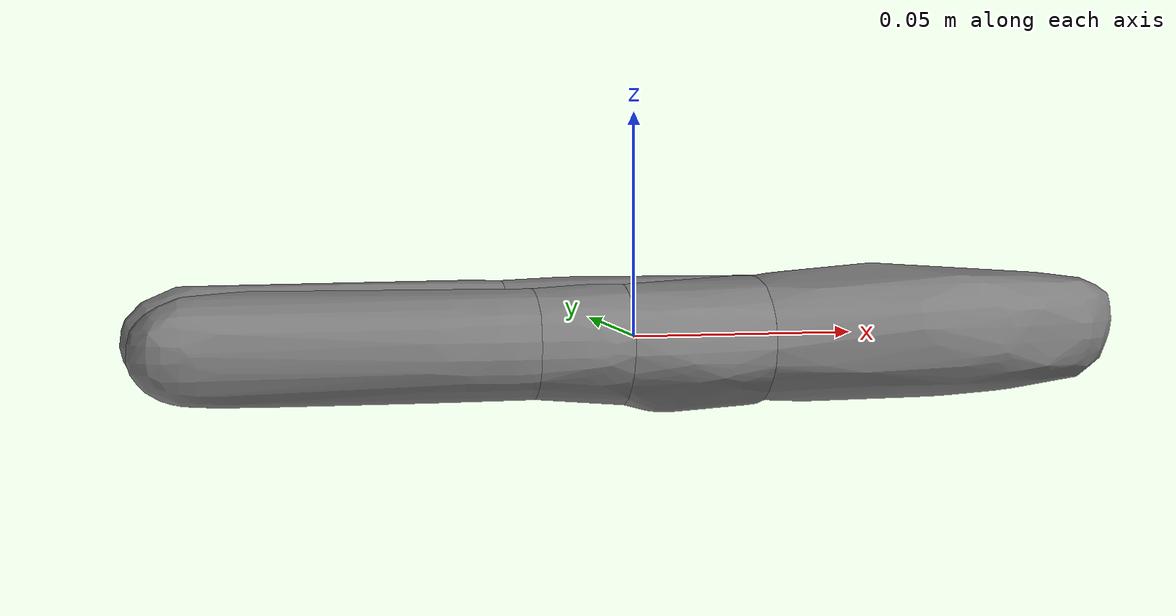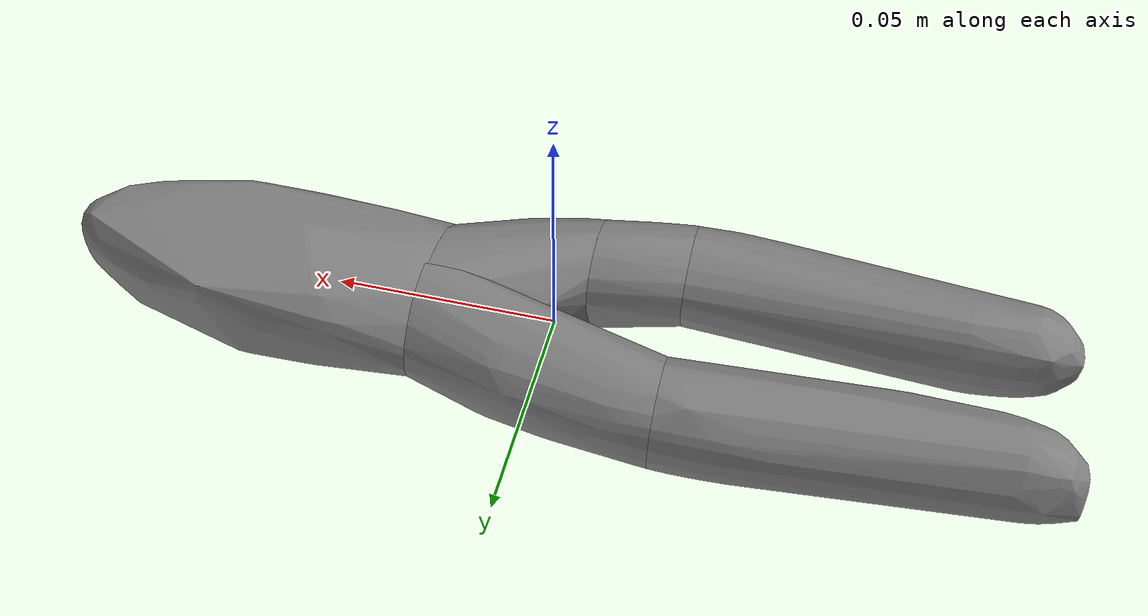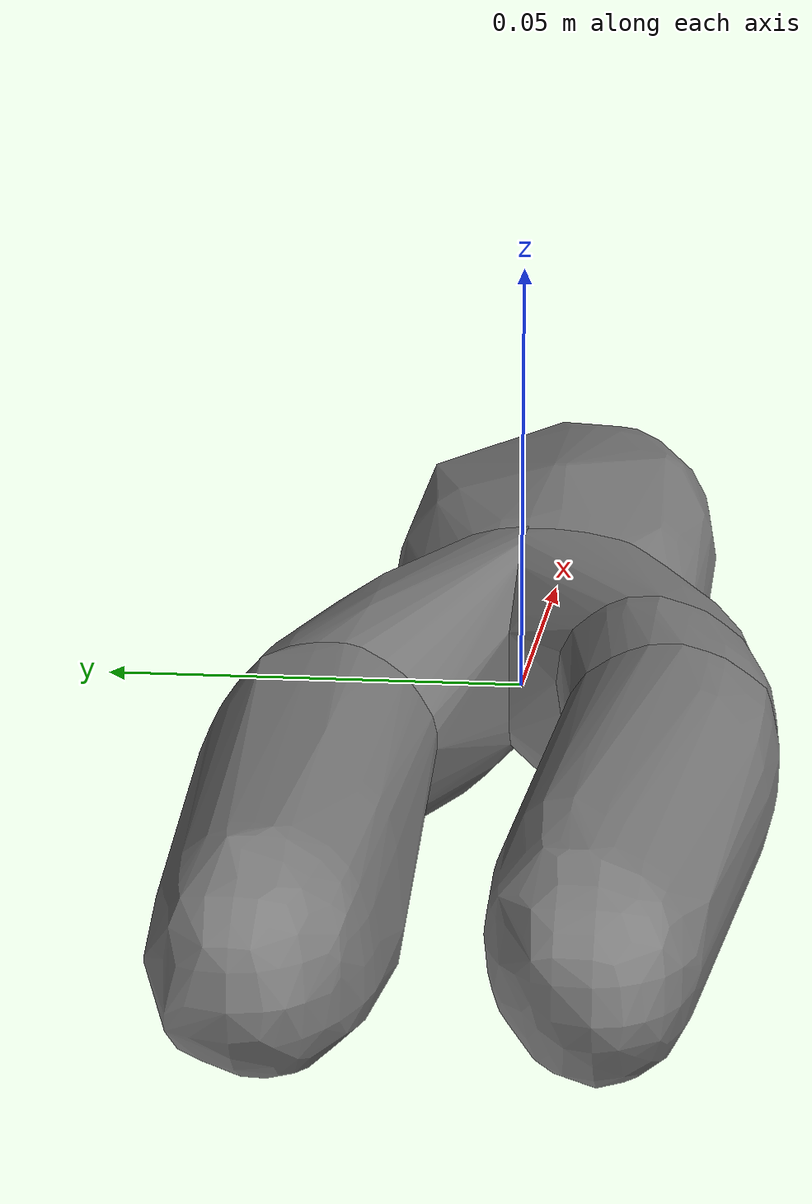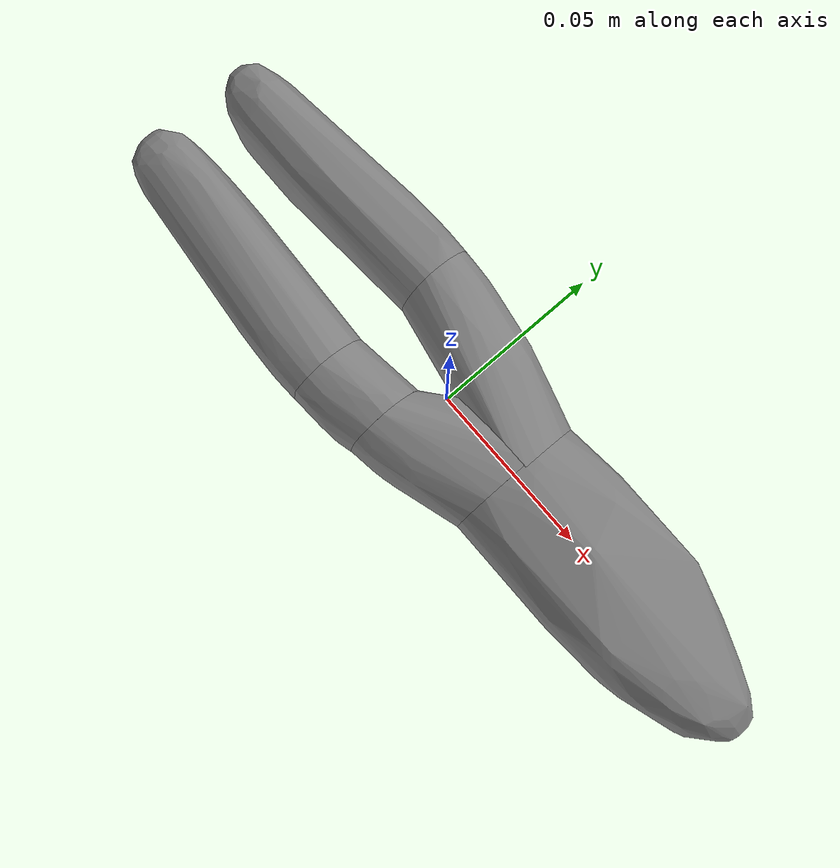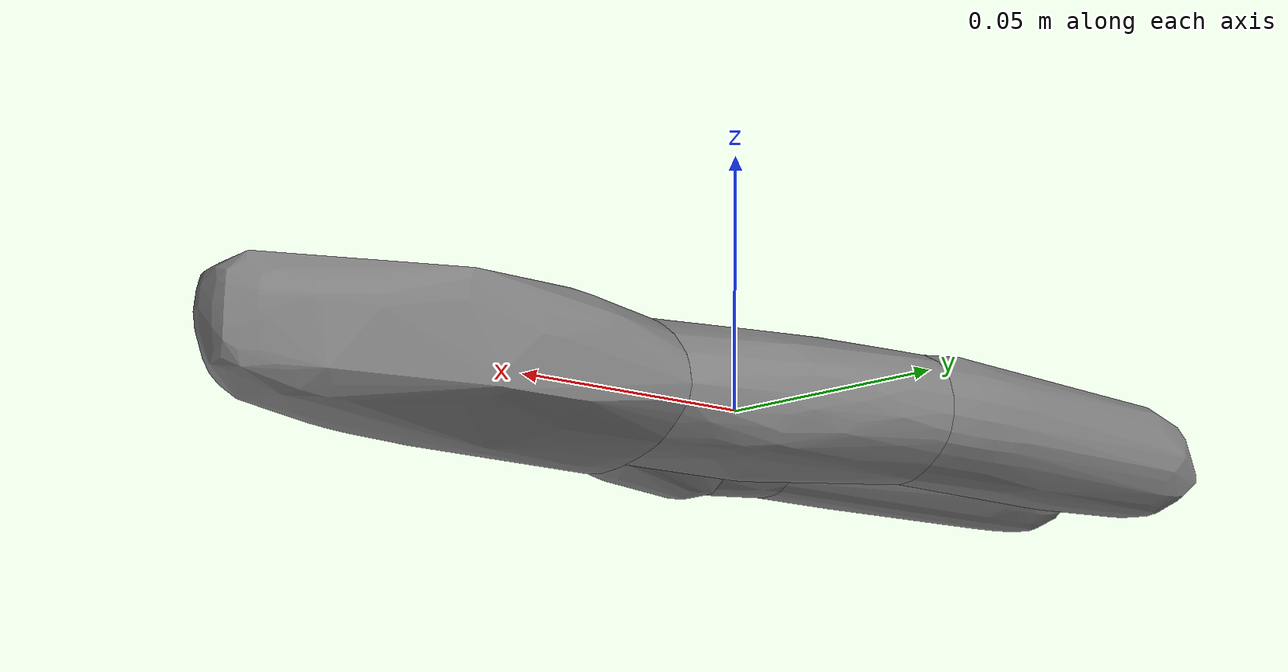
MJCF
<mujoco model="decomposed">
  <compiler angle="radian" meshdir="assets" />
  <default>
    <default class="visual">
      <geom type="mesh" contype="1" conaffinity="1" friction=".01 .01 .001" solref=".00001 .00001" solimp="0.9 0.95 0.001 0.5 2" margin=".005" mass=".02" />
    </default>
  </default>
  <asset>
    <mesh name="n0" file="../../meshh/pliers/coacd/decomposed/decomposed_0.obj" scale="0.0010000000474974513 0.0010000000474974513 0.0010000000474974513" />
    <mesh name="n1" file="../../meshh/pliers/coacd/decomposed/decomposed_1.obj" scale="0.0010000000474974513 0.0010000000474974513 0.0010000000474974513" />
    <mesh name="n2" file="../../meshh/pliers/coacd/decomposed/decomposed_2.obj" scale="0.0010000000474974513 0.0010000000474974513 0.0010000000474974513" />
    <mesh name="n3" file="../../meshh/pliers/coacd/decomposed/decomposed_3.obj" scale="0.0010000000474974513 0.0010000000474974513 0.0010000000474974513" />
    <mesh name="n4" file="../../meshh/pliers/coacd/decomposed/decomposed_4.obj" scale="0.0010000000474974513 0.0010000000474974513 0.0010000000474974513" />
    <mesh name="n5" file="../../meshh/pliers/coacd/decomposed/decomposed_5.obj" scale="0.0010000000474974513 0.0010000000474974513 0.0010000000474974513" />
  </asset>
  <worldbody>
    <body name="decomposed">
      <joint type="free" />
      <geom mesh="n0" class="visual" />
      <geom mesh="n1" class="visual" />
      <geom mesh="n2" class="visual" />
      <geom mesh="n3" class="visual" />
      <geom mesh="n4" class="visual" />
      <geom mesh="n5" class="visual" />
    </body>
  </worldbody>
</mujoco>
